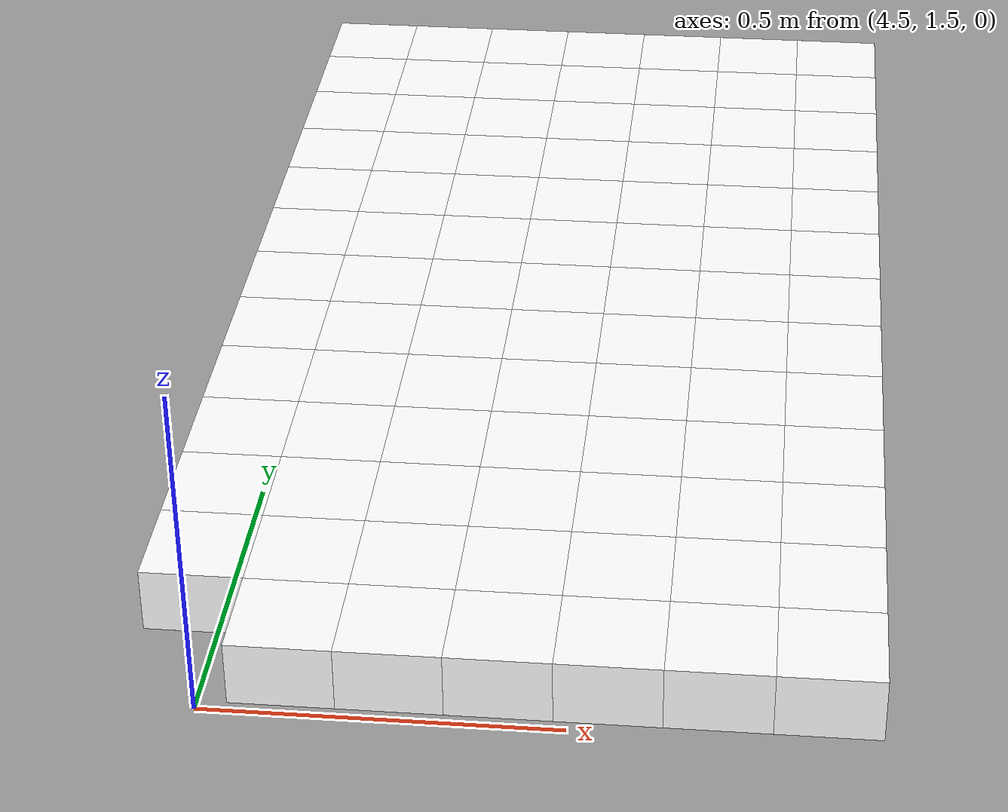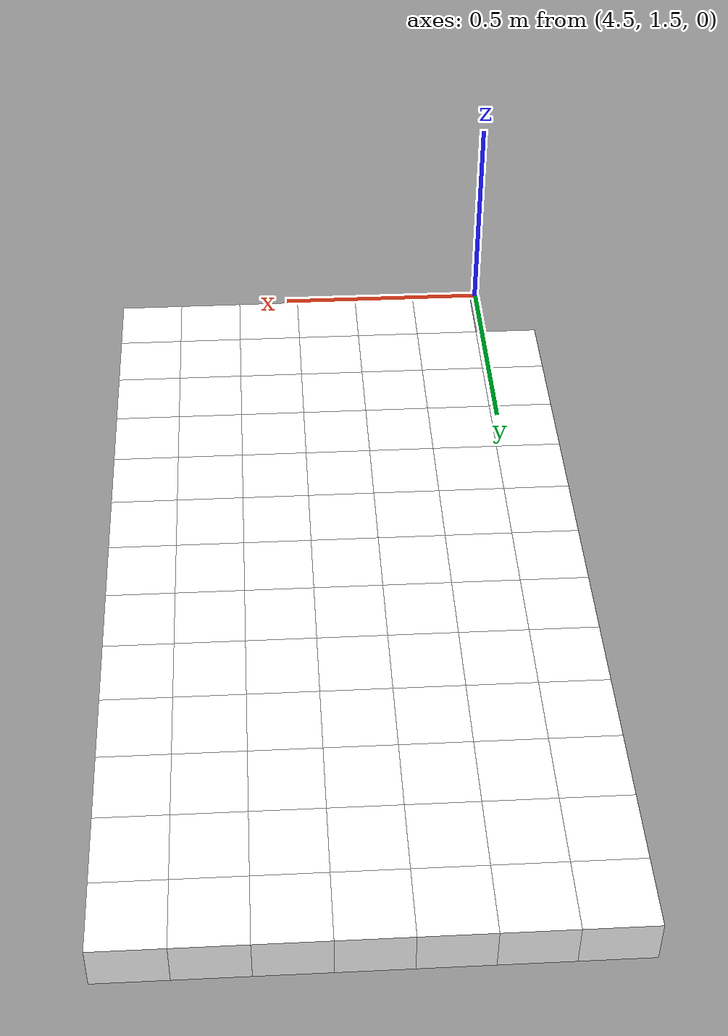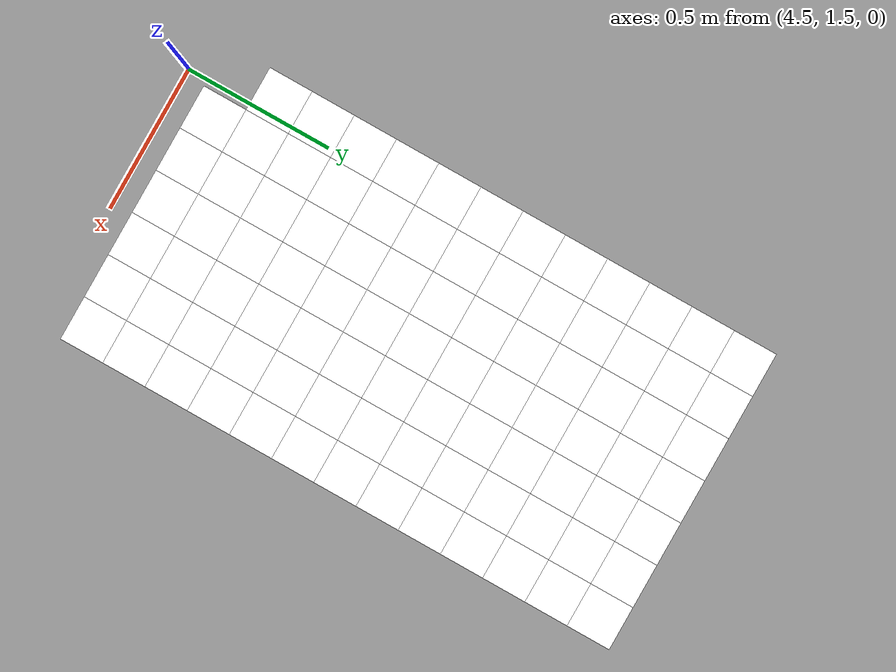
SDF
<sdf version="1.7">
 <world name="default">
  <include><uri>model://sun</uri></include>
  <model name="static_environment">
   <static>true</static>
   <link name="region_574">
    <pose>4.600000000000005 1.65 0.0 0.0 0.0 0.0</pose>
    <collision name="region_574_collision">
     <geometry><box><size>0.15 0.15 0.1</size></box></geometry>
     <surface><friction><ode><mu>1.0</mu><mu2>1.0</mu2></ode></friction></surface>
    </collision>
    <visual name="region_574_visual">
     <geometry><box><size>0.15 0.15 0.1</size></box></geometry>
     <material><ambient>1.0 1.0 1.0 1.0</ambient><diffuse>1.0 1.0 1.0 1.0</diffuse></material>
    </visual>
   </link>
   <link name="region_575">
    <pose>4.750000000000005 1.65 0.0 0.0 0.0 0.0</pose>
    <collision name="region_575_collision">
     <geometry><box><size>0.15 0.15 0.1</size></box></geometry>
     <surface><friction><ode><mu>1.0</mu><mu2>1.0</mu2></ode></friction></surface>
    </collision>
    <visual name="region_575_visual">
     <geometry><box><size>0.15 0.15 0.1</size></box></geometry>
     <material><ambient>1.0 1.0 1.0 1.0</ambient><diffuse>1.0 1.0 1.0 1.0</diffuse></material>
    </visual>
   </link>
   <link name="region_576">
    <pose>4.900000000000006 1.65 0.0 0.0 0.0 0.0</pose>
    <collision name="region_576_collision">
     <geometry><box><size>0.15 0.15 0.1</size></box></geometry>
     <surface><friction><ode><mu>1.0</mu><mu2>1.0</mu2></ode></friction></surface>
    </collision>
    <visual name="region_576_visual">
     <geometry><box><size>0.15 0.15 0.1</size></box></geometry>
     <material><ambient>1.0 1.0 1.0 1.0</ambient><diffuse>1.0 1.0 1.0 1.0</diffuse></material>
    </visual>
   </link>
   <link name="region_577">
    <pose>5.050000000000006 1.65 0.0 0.0 0.0 0.0</pose>
    <collision name="region_577_collision">
     <geometry><box><size>0.15 0.15 0.1</size></box></geometry>
     <surface><friction><ode><mu>1.0</mu><mu2>1.0</mu2></ode></friction></surface>
    </collision>
    <visual name="region_577_visual">
     <geometry><box><size>0.15 0.15 0.1</size></box></geometry>
     <material><ambient>1.0 1.0 1.0 1.0</ambient><diffuse>1.0 1.0 1.0 1.0</diffuse></material>
    </visual>
   </link>
   <link name="region_578">
    <pose>5.200000000000006 1.65 0.0 0.0 0.0 0.0</pose>
    <collision name="region_578_collision">
     <geometry><box><size>0.15 0.15 0.1</size></box></geometry>
     <surface><friction><ode><mu>1.0</mu><mu2>1.0</mu2></ode></friction></surface>
    </collision>
    <visual name="region_578_visual">
     <geometry><box><size>0.15 0.15 0.1</size></box></geometry>
     <material><ambient>1.0 1.0 1.0 1.0</ambient><diffuse>1.0 1.0 1.0 1.0</diffuse></material>
    </visual>
   </link>
   <link name="region_579">
    <pose>5.350000000000007 1.65 0.0 0.0 0.0 0.0</pose>
    <collision name="region_579_collision">
     <geometry><box><size>0.15 0.15 0.1</size></box></geometry>
     <surface><friction><ode><mu>1.0</mu><mu2>1.0</mu2></ode></friction></surface>
    </collision>
    <visual name="region_579_visual">
     <geometry><box><size>0.15 0.15 0.1</size></box></geometry>
     <material><ambient>1.0 1.0 1.0 1.0</ambient><diffuse>1.0 1.0 1.0 1.0</diffuse></material>
    </visual>
   </link>
   <link name="region_593">
    <pose>4.450000000000005 1.7999999999999998 0.0 0.0 0.0 0.0</pose>
    <collision name="region_593_collision">
     <geometry><box><size>0.15 0.15 0.1</size></box></geometry>
     <surface><friction><ode><mu>1.0</mu><mu2>1.0</mu2></ode></friction></surface>
    </collision>
    <visual name="region_593_visual">
     <geometry><box><size>0.15 0.15 0.1</size></box></geometry>
     <material><ambient>1.0 1.0 1.0 1.0</ambient><diffuse>1.0 1.0 1.0 1.0</diffuse></material>
    </visual>
   </link>
   <link name="region_594">
    <pose>4.600000000000005 1.7999999999999998 0.0 0.0 0.0 0.0</pose>
    <collision name="region_594_collision">
     <geometry><box><size>0.15 0.15 0.1</size></box></geometry>
     <surface><friction><ode><mu>1.0</mu><mu2>1.0</mu2></ode></friction></surface>
    </collision>
    <visual name="region_594_visual">
     <geometry><box><size>0.15 0.15 0.1</size></box></geometry>
     <material><ambient>1.0 1.0 1.0 1.0</ambient><diffuse>1.0 1.0 1.0 1.0</diffuse></material>
    </visual>
   </link>
   <link name="region_595">
    <pose>4.750000000000005 1.7999999999999998 0.0 0.0 0.0 0.0</pose>
    <collision name="region_595_collision">
     <geometry><box><size>0.15 0.15 0.1</size></box></geometry>
     <surface><friction><ode><mu>1.0</mu><mu2>1.0</mu2></ode></friction></surface>
    </collision>
    <visual name="region_595_visual">
     <geometry><box><size>0.15 0.15 0.1</size></box></geometry>
     <material><ambient>1.0 1.0 1.0 1.0</ambient><diffuse>1.0 1.0 1.0 1.0</diffuse></material>
    </visual>
   </link>
   <link name="region_596">
    <pose>4.900000000000006 1.7999999999999998 0.0 0.0 0.0 0.0</pose>
    <collision name="region_596_collision">
     <geometry><box><size>0.15 0.15 0.1</size></box></geometry>
     <surface><friction><ode><mu>1.0</mu><mu2>1.0</mu2></ode></friction></surface>
    </collision>
    <visual name="region_596_visual">
     <geometry><box><size>0.15 0.15 0.1</size></box></geometry>
     <material><ambient>1.0 1.0 1.0 1.0</ambient><diffuse>1.0 1.0 1.0 1.0</diffuse></material>
    </visual>
   </link>
   <link name="region_597">
    <pose>5.050000000000006 1.7999999999999998 0.0 0.0 0.0 0.0</pose>
    <collision name="region_597_collision">
     <geometry><box><size>0.15 0.15 0.1</size></box></geometry>
     <surface><friction><ode><mu>1.0</mu><mu2>1.0</mu2></ode></friction></surface>
    </collision>
    <visual name="region_597_visual">
     <geometry><box><size>0.15 0.15 0.1</size></box></geometry>
     <material><ambient>1.0 1.0 1.0 1.0</ambient><diffuse>1.0 1.0 1.0 1.0</diffuse></material>
    </visual>
   </link>
   <link name="region_598">
    <pose>5.200000000000006 1.7999999999999998 0.0 0.0 0.0 0.0</pose>
    <collision name="region_598_collision">
     <geometry><box><size>0.15 0.15 0.1</size></box></geometry>
     <surface><friction><ode><mu>1.0</mu><mu2>1.0</mu2></ode></friction></surface>
    </collision>
    <visual name="region_598_visual">
     <geometry><box><size>0.15 0.15 0.1</size></box></geometry>
     <material><ambient>1.0 1.0 1.0 1.0</ambient><diffuse>1.0 1.0 1.0 1.0</diffuse></material>
    </visual>
   </link>
   <link name="region_599">
    <pose>5.350000000000007 1.7999999999999998 0.0 0.0 0.0 0.0</pose>
    <collision name="region_599_collision">
     <geometry><box><size>0.15 0.15 0.1</size></box></geometry>
     <surface><friction><ode><mu>1.0</mu><mu2>1.0</mu2></ode></friction></surface>
    </collision>
    <visual name="region_599_visual">
     <geometry><box><size>0.15 0.15 0.1</size></box></geometry>
     <material><ambient>1.0 1.0 1.0 1.0</ambient><diffuse>1.0 1.0 1.0 1.0</diffuse></material>
    </visual>
   </link>
   <link name="region_613">
    <pose>4.450000000000005 1.9499999999999997 0.0 0.0 0.0 0.0</pose>
    <collision name="region_613_collision">
     <geometry><box><size>0.15 0.15 0.1</size></box></geometry>
     <surface><friction><ode><mu>1.0</mu><mu2>1.0</mu2></ode></friction></surface>
    </collision>
    <visual name="region_613_visual">
     <geometry><box><size>0.15 0.15 0.1</size></box></geometry>
     <material><ambient>1.0 1.0 1.0 1.0</ambient><diffuse>1.0 1.0 1.0 1.0</diffuse></material>
    </visual>
   </link>
   <link name="region_614">
    <pose>4.600000000000005 1.9499999999999997 0.0 0.0 0.0 0.0</pose>
    <collision name="region_614_collision">
     <geometry><box><size>0.15 0.15 0.1</size></box></geometry>
     <surface><friction><ode><mu>1.0</mu><mu2>1.0</mu2></ode></friction></surface>
    </collision>
    <visual name="region_614_visual">
     <geometry><box><size>0.15 0.15 0.1</size></box></geometry>
     <material><ambient>1.0 1.0 1.0 1.0</ambient><diffuse>1.0 1.0 1.0 1.0</diffuse></material>
    </visual>
   </link>
   <link name="region_615">
    <pose>4.750000000000005 1.9499999999999997 0.0 0.0 0.0 0.0</pose>
    <collision name="region_615_collision">
     <geometry><box><size>0.15 0.15 0.1</size></box></geometry>
     <surface><friction><ode><mu>1.0</mu><mu2>1.0</mu2></ode></friction></surface>
    </collision>
    <visual name="region_615_visual">
     <geometry><box><size>0.15 0.15 0.1</size></box></geometry>
     <material><ambient>1.0 1.0 1.0 1.0</ambient><diffuse>1.0 1.0 1.0 1.0</diffuse></material>
    </visual>
   </link>
   <link name="region_616">
    <pose>4.900000000000006 1.9499999999999997 0.0 0.0 0.0 0.0</pose>
    <collision name="region_616_collision">
     <geometry><box><size>0.15 0.15 0.1</size></box></geometry>
     <surface><friction><ode><mu>1.0</mu><mu2>1.0</mu2></ode></friction></surface>
    </collision>
    <visual name="region_616_visual">
     <geometry><box><size>0.15 0.15 0.1</size></box></geometry>
     <material><ambient>1.0 1.0 1.0 1.0</ambient><diffuse>1.0 1.0 1.0 1.0</diffuse></material>
    </visual>
   </link>
   <link name="region_617">
    <pose>5.050000000000006 1.9499999999999997 0.0 0.0 0.0 0.0</pose>
    <collision name="region_617_collision">
     <geometry><box><size>0.15 0.15 0.1</size></box></geometry>
     <surface><friction><ode><mu>1.0</mu><mu2>1.0</mu2></ode></friction></surface>
    </collision>
    <visual name="region_617_visual">
     <geometry><box><size>0.15 0.15 0.1</size></box></geometry>
     <material><ambient>1.0 1.0 1.0 1.0</ambient><diffuse>1.0 1.0 1.0 1.0</diffuse></material>
    </visual>
   </link>
   <link name="region_618">
    <pose>5.200000000000006 1.9499999999999997 0.0 0.0 0.0 0.0</pose>
    <collision name="region_618_collision">
     <geometry><box><size>0.15 0.15 0.1</size></box></geometry>
     <surface><friction><ode><mu>1.0</mu><mu2>1.0</mu2></ode></friction></surface>
    </collision>
    <visual name="region_618_visual">
     <geometry><box><size>0.15 0.15 0.1</size></box></geometry>
     <material><ambient>1.0 1.0 1.0 1.0</ambient><diffuse>1.0 1.0 1.0 1.0</diffuse></material>
    </visual>
   </link>
   <link name="region_619">
    <pose>5.350000000000007 1.9499999999999997 0.0 0.0 0.0 0.0</pose>
    <collision name="region_619_collision">
     <geometry><box><size>0.15 0.15 0.1</size></box></geometry>
     <surface><friction><ode><mu>1.0</mu><mu2>1.0</mu2></ode></friction></surface>
    </collision>
    <visual name="region_619_visual">
     <geometry><box><size>0.15 0.15 0.1</size></box></geometry>
     <material><ambient>1.0 1.0 1.0 1.0</ambient><diffuse>1.0 1.0 1.0 1.0</diffuse></material>
    </visual>
   </link>
   <link name="region_633">
    <pose>4.450000000000005 2.0999999999999996 0.0 0.0 0.0 0.0</pose>
    <collision name="region_633_collision">
     <geometry><box><size>0.15 0.15 0.1</size></box></geometry>
     <surface><friction><ode><mu>1.0</mu><mu2>1.0</mu2></ode></friction></surface>
    </collision>
    <visual name="region_633_visual">
     <geometry><box><size>0.15 0.15 0.1</size></box></geometry>
     <material><ambient>1.0 1.0 1.0 1.0</ambient><diffuse>1.0 1.0 1.0 1.0</diffuse></material>
    </visual>
   </link>
   <link name="region_634">
    <pose>4.600000000000005 2.0999999999999996 0.0 0.0 0.0 0.0</pose>
    <collision name="region_634_collision">
     <geometry><box><size>0.15 0.15 0.1</size></box></geometry>
     <surface><friction><ode><mu>1.0</mu><mu2>1.0</mu2></ode></friction></surface>
    </collision>
    <visual name="region_634_visual">
     <geometry><box><size>0.15 0.15 0.1</size></box></geometry>
     <material><ambient>1.0 1.0 1.0 1.0</ambient><diffuse>1.0 1.0 1.0 1.0</diffuse></material>
    </visual>
   </link>
   <link name="region_635">
    <pose>4.750000000000005 2.0999999999999996 0.0 0.0 0.0 0.0</pose>
    <collision name="region_635_collision">
     <geometry><box><size>0.15 0.15 0.1</size></box></geometry>
     <surface><friction><ode><mu>1.0</mu><mu2>1.0</mu2></ode></friction></surface>
    </collision>
    <visual name="region_635_visual">
     <geometry><box><size>0.15 0.15 0.1</size></box></geometry>
     <material><ambient>1.0 1.0 1.0 1.0</ambient><diffuse>1.0 1.0 1.0 1.0</diffuse></material>
    </visual>
   </link>
   <link name="region_636">
    <pose>4.900000000000006 2.0999999999999996 0.0 0.0 0.0 0.0</pose>
    <collision name="region_636_collision">
     <geometry><box><size>0.15 0.15 0.1</size></box></geometry>
     <surface><friction><ode><mu>1.0</mu><mu2>1.0</mu2></ode></friction></surface>
    </collision>
    <visual name="region_636_visual">
     <geometry><box><size>0.15 0.15 0.1</size></box></geometry>
     <material><ambient>1.0 1.0 1.0 1.0</ambient><diffuse>1.0 1.0 1.0 1.0</diffuse></material>
    </visual>
   </link>
   <link name="region_637">
    <pose>5.050000000000006 2.0999999999999996 0.0 0.0 0.0 0.0</pose>
    <collision name="region_637_collision">
     <geometry><box><size>0.15 0.15 0.1</size></box></geometry>
     <surface><friction><ode><mu>1.0</mu><mu2>1.0</mu2></ode></friction></surface>
    </collision>
    <visual name="region_637_visual">
     <geometry><box><size>0.15 0.15 0.1</size></box></geometry>
     <material><ambient>1.0 1.0 1.0 1.0</ambient><diffuse>1.0 1.0 1.0 1.0</diffuse></material>
    </visual>
   </link>
   <link name="region_638">
    <pose>5.200000000000006 2.0999999999999996 0.0 0.0 0.0 0.0</pose>
    <collision name="region_638_collision">
     <geometry><box><size>0.15 0.15 0.1</size></box></geometry>
     <surface><friction><ode><mu>1.0</mu><mu2>1.0</mu2></ode></friction></surface>
    </collision>
    <visual name="region_638_visual">
     <geometry><box><size>0.15 0.15 0.1</size></box></geometry>
     <material><ambient>1.0 1.0 1.0 1.0</ambient><diffuse>1.0 1.0 1.0 1.0</diffuse></material>
    </visual>
   </link>
   <link name="region_639">
    <pose>5.350000000000007 2.0999999999999996 0.0 0.0 0.0 0.0</pose>
    <collision name="region_639_collision">
     <geometry><box><size>0.15 0.15 0.1</size></box></geometry>
     <surface><friction><ode><mu>1.0</mu><mu2>1.0</mu2></ode></friction></surface>
    </collision>
    <visual name="region_639_visual">
     <geometry><box><size>0.15 0.15 0.1</size></box></geometry>
     <material><ambient>1.0 1.0 1.0 1.0</ambient><diffuse>1.0 1.0 1.0 1.0</diffuse></material>
    </visual>
   </link>
   <link name="region_653">
    <pose>4.450000000000005 2.2499999999999996 0.0 0.0 0.0 0.0</pose>
    <collision name="region_653_collision">
     <geometry><box><size>0.15 0.15 0.1</size></box></geometry>
     <surface><friction><ode><mu>1.0</mu><mu2>1.0</mu2></ode></friction></surface>
    </collision>
    <visual name="region_653_visual">
     <geometry><box><size>0.15 0.15 0.1</size></box></geometry>
     <material><ambient>1.0 1.0 1.0 1.0</ambient><diffuse>1.0 1.0 1.0 1.0</diffuse></material>
    </visual>
   </link>
   <link name="region_654">
    <pose>4.600000000000005 2.2499999999999996 0.0 0.0 0.0 0.0</pose>
    <collision name="region_654_collision">
     <geometry><box><size>0.15 0.15 0.1</size></box></geometry>
     <surface><friction><ode><mu>1.0</mu><mu2>1.0</mu2></ode></friction></surface>
    </collision>
    <visual name="region_654_visual">
     <geometry><box><size>0.15 0.15 0.1</size></box></geometry>
     <material><ambient>1.0 1.0 1.0 1.0</ambient><diffuse>1.0 1.0 1.0 1.0</diffuse></material>
    </visual>
   </link>
   <link name="region_655">
    <pose>4.750000000000005 2.2499999999999996 0.0 0.0 0.0 0.0</pose>
    <collision name="region_655_collision">
     <geometry><box><size>0.15 0.15 0.1</size></box></geometry>
     <surface><friction><ode><mu>1.0</mu><mu2>1.0</mu2></ode></friction></surface>
    </collision>
    <visual name="region_655_visual">
     <geometry><box><size>0.15 0.15 0.1</size></box></geometry>
     <material><ambient>1.0 1.0 1.0 1.0</ambient><diffuse>1.0 1.0 1.0 1.0</diffuse></material>
    </visual>
   </link>
   <link name="region_656">
    <pose>4.900000000000006 2.2499999999999996 0.0 0.0 0.0 0.0</pose>
    <collision name="region_656_collision">
     <geometry><box><size>0.15 0.15 0.1</size></box></geometry>
     <surface><friction><ode><mu>1.0</mu><mu2>1.0</mu2></ode></friction></surface>
    </collision>
    <visual name="region_656_visual">
     <geometry><box><size>0.15 0.15 0.1</size></box></geometry>
     <material><ambient>1.0 1.0 1.0 1.0</ambient><diffuse>1.0 1.0 1.0 1.0</diffuse></material>
    </visual>
   </link>
   <link name="region_657">
    <pose>5.050000000000006 2.2499999999999996 0.0 0.0 0.0 0.0</pose>
    <collision name="region_657_collision">
     <geometry><box><size>0.15 0.15 0.1</size></box></geometry>
     <surface><friction><ode><mu>1.0</mu><mu2>1.0</mu2></ode></friction></surface>
    </collision>
    <visual name="region_657_visual">
     <geometry><box><size>0.15 0.15 0.1</size></box></geometry>
     <material><ambient>1.0 1.0 1.0 1.0</ambient><diffuse>1.0 1.0 1.0 1.0</diffuse></material>
    </visual>
   </link>
   <link name="region_658">
    <pose>5.200000000000006 2.2499999999999996 0.0 0.0 0.0 0.0</pose>
    <collision name="region_658_collision">
     <geometry><box><size>0.15 0.15 0.1</size></box></geometry>
     <surface><friction><ode><mu>1.0</mu><mu2>1.0</mu2></ode></friction></surface>
    </collision>
    <visual name="region_658_visual">
     <geometry><box><size>0.15 0.15 0.1</size></box></geometry>
     <material><ambient>1.0 1.0 1.0 1.0</ambient><diffuse>1.0 1.0 1.0 1.0</diffuse></material>
    </visual>
   </link>
   <link name="region_659">
    <pose>5.350000000000007 2.2499999999999996 0.0 0.0 0.0 0.0</pose>
    <collision name="region_659_collision">
     <geometry><box><size>0.15 0.15 0.1</size></box></geometry>
     <surface><friction><ode><mu>1.0</mu><mu2>1.0</mu2></ode></friction></surface>
    </collision>
    <visual name="region_659_visual">
     <geometry><box><size>0.15 0.15 0.1</size></box></geometry>
     <material><ambient>1.0 1.0 1.0 1.0</ambient><diffuse>1.0 1.0 1.0 1.0</diffuse></material>
    </visual>
   </link>
   <link name="region_673">
    <pose>4.450000000000005 2.3999999999999995 0.0 0.0 0.0 0.0</pose>
    <collision name="region_673_collision">
     <geometry><box><size>0.15 0.15 0.1</size></box></geometry>
     <surface><friction><ode><mu>1.0</mu><mu2>1.0</mu2></ode></friction></surface>
    </collision>
    <visual name="region_673_visual">
     <geometry><box><size>0.15 0.15 0.1</size></box></geometry>
     <material><ambient>1.0 1.0 1.0 1.0</ambient><diffuse>1.0 1.0 1.0 1.0</diffuse></material>
    </visual>
   </link>
   <link name="region_674">
    <pose>4.600000000000005 2.3999999999999995 0.0 0.0 0.0 0.0</pose>
    <collision name="region_674_collision">
     <geometry><box><size>0.15 0.15 0.1</size></box></geometry>
     <surface><friction><ode><mu>1.0</mu><mu2>1.0</mu2></ode></friction></surface>
    </collision>
    <visual name="region_674_visual">
     <geometry><box><size>0.15 0.15 0.1</size></box></geometry>
     <material><ambient>1.0 1.0 1.0 1.0</ambient><diffuse>1.0 1.0 1.0 1.0</diffuse></material>
    </visual>
   </link>
   <link name="region_675">
    <pose>4.750000000000005 2.3999999999999995 0.0 0.0 0.0 0.0</pose>
    <collision name="region_675_collision">
     <geometry><box><size>0.15 0.15 0.1</size></box></geometry>
     <surface><friction><ode><mu>1.0</mu><mu2>1.0</mu2></ode></friction></surface>
    </collision>
    <visual name="region_675_visual">
     <geometry><box><size>0.15 0.15 0.1</size></box></geometry>
     <material><ambient>1.0 1.0 1.0 1.0</ambient><diffuse>1.0 1.0 1.0 1.0</diffuse></material>
    </visual>
   </link>
   <link name="region_676">
    <pose>4.900000000000006 2.3999999999999995 0.0 0.0 0.0 0.0</pose>
    <collision name="region_676_collision">
     <geometry><box><size>0.15 0.15 0.1</size></box></geometry>
     <surface><friction><ode><mu>1.0</mu><mu2>1.0</mu2></ode></friction></surface>
    </collision>
    <visual name="region_676_visual">
     <geometry><box><size>0.15 0.15 0.1</size></box></geometry>
     <material><ambient>1.0 1.0 1.0 1.0</ambient><diffuse>1.0 1.0 1.0 1.0</diffuse></material>
    </visual>
   </link>
   <link name="region_677">
    <pose>5.050000000000006 2.3999999999999995 0.0 0.0 0.0 0.0</pose>
    <collision name="region_677_collision">
     <geometry><box><size>0.15 0.15 0.1</size></box></geometry>
     <surface><friction><ode><mu>1.0</mu><mu2>1.0</mu2></ode></friction></surface>
    </collision>
    <visual name="region_677_visual">
     <geometry><box><size>0.15 0.15 0.1</size></box></geometry>
     <material><ambient>1.0 1.0 1.0 1.0</ambient><diffuse>1.0 1.0 1.0 1.0</diffuse></material>
    </visual>
   </link>
   <link name="region_678">
    <pose>5.200000000000006 2.3999999999999995 0.0 0.0 0.0 0.0</pose>
    <collision name="region_678_collision">
     <geometry><box><size>0.15 0.15 0.1</size></box></geometry>
     <surface><friction><ode><mu>1.0</mu><mu2>1.0</mu2></ode></friction></surface>
    </collision>
    <visual name="region_678_visual">
     <geometry><box><size>0.15 0.15 0.1</size></box></geometry>
     <material><ambient>1.0 1.0 1.0 1.0</ambient><diffuse>1.0 1.0 1.0 1.0</diffuse></material>
    </visual>
   </link>
   <link name="region_679">
    <pose>5.350000000000007 2.3999999999999995 0.0 0.0 0.0 0.0</pose>
    <collision name="region_679_collision">
     <geometry><box><size>0.15 0.15 0.1</size></box></geometry>
     <surface><friction><ode><mu>1.0</mu><mu2>1.0</mu2></ode></friction></surface>
    </collision>
    <visual name="region_679_visual">
     <geometry><box><size>0.15 0.15 0.1</size></box></geometry>
     <material><ambient>1.0 1.0 1.0 1.0</ambient><diffuse>1.0 1.0 1.0 1.0</diffuse></material>
    </visual>
   </link>
   <link name="region_693">
    <pose>4.450000000000005 2.5499999999999994 0.0 0.0 0.0 0.0</pose>
    <collision name="region_693_collision">
     <geometry><box><size>0.15 0.15 0.1</size></box></geometry>
     <surface><friction><ode><mu>1.0</mu><mu2>1.0</mu2></ode></friction></surface>
    </collision>
    <visual name="region_693_visual">
     <geometry><box><size>0.15 0.15 0.1</size></box></geometry>
     <material><ambient>1.0 1.0 1.0 1.0</ambient><diffuse>1.0 1.0 1.0 1.0</diffuse></material>
    </visual>
   </link>
   <link name="region_694">
    <pose>4.600000000000005 2.5499999999999994 0.0 0.0 0.0 0.0</pose>
    <collision name="region_694_collision">
     <geometry><box><size>0.15 0.15 0.1</size></box></geometry>
     <surface><friction><ode><mu>1.0</mu><mu2>1.0</mu2></ode></friction></surface>
    </collision>
    <visual name="region_694_visual">
     <geometry><box><size>0.15 0.15 0.1</size></box></geometry>
     <material><ambient>1.0 1.0 1.0 1.0</ambient><diffuse>1.0 1.0 1.0 1.0</diffuse></material>
    </visual>
   </link>
   <link name="region_695">
    <pose>4.750000000000005 2.5499999999999994 0.0 0.0 0.0 0.0</pose>
    <collision name="region_695_collision">
     <geometry><box><size>0.15 0.15 0.1</size></box></geometry>
     <surface><friction><ode><mu>1.0</mu><mu2>1.0</mu2></ode></friction></surface>
    </collision>
    <visual name="region_695_visual">
     <geometry><box><size>0.15 0.15 0.1</size></box></geometry>
     <material><ambient>1.0 1.0 1.0 1.0</ambient><diffuse>1.0 1.0 1.0 1.0</diffuse></material>
    </visual>
   </link>
   <link name="region_696">
    <pose>4.900000000000006 2.5499999999999994 0.0 0.0 0.0 0.0</pose>
    <collision name="region_696_collision">
     <geometry><box><size>0.15 0.15 0.1</size></box></geometry>
     <surface><friction><ode><mu>1.0</mu><mu2>1.0</mu2></ode></friction></surface>
    </collision>
    <visual name="region_696_visual">
     <geometry><box><size>0.15 0.15 0.1</size></box></geometry>
     <material><ambient>1.0 1.0 1.0 1.0</ambient><diffuse>1.0 1.0 1.0 1.0</diffuse></material>
    </visual>
   </link>
   <link name="region_697">
    <pose>5.050000000000006 2.5499999999999994 0.0 0.0 0.0 0.0</pose>
    <collision name="region_697_collision">
     <geometry><box><size>0.15 0.15 0.1</size></box></geometry>
     <surface><friction><ode><mu>1.0</mu><mu2>1.0</mu2></ode></friction></surface>
    </collision>
    <visual name="region_697_visual">
     <geometry><box><size>0.15 0.15 0.1</size></box></geometry>
     <material><ambient>1.0 1.0 1.0 1.0</ambient><diffuse>1.0 1.0 1.0 1.0</diffuse></material>
    </visual>
   </link>
   <link name="region_698">
    <pose>5.200000000000006 2.5499999999999994 0.0 0.0 0.0 0.0</pose>
    <collision name="region_698_collision">
     <geometry><box><size>0.15 0.15 0.1</size></box></geometry>
     <surface><friction><ode><mu>1.0</mu><mu2>1.0</mu2></ode></friction></surface>
    </collision>
    <visual name="region_698_visual">
     <geometry><box><size>0.15 0.15 0.1</size></box></geometry>
     <material><ambient>1.0 1.0 1.0 1.0</ambient><diffuse>1.0 1.0 1.0 1.0</diffuse></material>
    </visual>
   </link>
   <link name="region_699">
    <pose>5.350000000000007 2.5499999999999994 0.0 0.0 0.0 0.0</pose>
    <collision name="region_699_collision">
     <geometry><box><size>0.15 0.15 0.1</size></box></geometry>
     <surface><friction><ode><mu>1.0</mu><mu2>1.0</mu2></ode></friction></surface>
    </collision>
    <visual name="region_699_visual">
     <geometry><box><size>0.15 0.15 0.1</size></box></geometry>
     <material><ambient>1.0 1.0 1.0 1.0</ambient><diffuse>1.0 1.0 1.0 1.0</diffuse></material>
    </visual>
   </link>
   <link name="region_713">
    <pose>4.450000000000005 2.6999999999999997 0.0 0.0 0.0 0.0</pose>
    <collision name="region_713_collision">
     <geometry><box><size>0.15 0.15 0.1</size></box></geometry>
     <surface><friction><ode><mu>1.0</mu><mu2>1.0</mu2></ode></friction></surface>
    </collision>
    <visual name="region_713_visual">
     <geometry><box><size>0.15 0.15 0.1</size></box></geometry>
     <material><ambient>1.0 1.0 1.0 1.0</ambient><diffuse>1.0 1.0 1.0 1.0</diffuse></material>
    </visual>
   </link>
   <link name="region_714">
    <pose>4.600000000000005 2.6999999999999997 0.0 0.0 0.0 0.0</pose>
    <collision name="region_714_collision">
     <geometry><box><size>0.15 0.15 0.1</size></box></geometry>
     <surface><friction><ode><mu>1.0</mu><mu2>1.0</mu2></ode></friction></surface>
    </collision>
    <visual name="region_714_visual">
     <geometry><box><size>0.15 0.15 0.1</size></box></geometry>
     <material><ambient>1.0 1.0 1.0 1.0</ambient><diffuse>1.0 1.0 1.0 1.0</diffuse></material>
    </visual>
   </link>
   <link name="region_715">
    <pose>4.750000000000005 2.6999999999999997 0.0 0.0 0.0 0.0</pose>
    <collision name="region_715_collision">
     <geometry><box><size>0.15 0.15 0.1</size></box></geometry>
     <surface><friction><ode><mu>1.0</mu><mu2>1.0</mu2></ode></friction></surface>
    </collision>
    <visual name="region_715_visual">
     <geometry><box><size>0.15 0.15 0.1</size></box></geometry>
     <material><ambient>1.0 1.0 1.0 1.0</ambient><diffuse>1.0 1.0 1.0 1.0</diffuse></material>
    </visual>
   </link>
   <link name="region_716">
    <pose>4.900000000000006 2.6999999999999997 0.0 0.0 0.0 0.0</pose>
    <collision name="region_716_collision">
     <geometry><box><size>0.15 0.15 0.1</size></box></geometry>
     <surface><friction><ode><mu>1.0</mu><mu2>1.0</mu2></ode></friction></surface>
    </collision>
    <visual name="region_716_visual">
     <geometry><box><size>0.15 0.15 0.1</size></box></geometry>
     <material><ambient>1.0 1.0 1.0 1.0</ambient><diffuse>1.0 1.0 1.0 1.0</diffuse></material>
    </visual>
   </link>
   <link name="region_717">
    <pose>5.050000000000006 2.6999999999999997 0.0 0.0 0.0 0.0</pose>
    <collision name="region_717_collision">
     <geometry><box><size>0.15 0.15 0.1</size></box></geometry>
     <surface><friction><ode><mu>1.0</mu><mu2>1.0</mu2></ode></friction></surface>
    </collision>
    <visual name="region_717_visual">
     <geometry><box><size>0.15 0.15 0.1</size></box></geometry>
     <material><ambient>1.0 1.0 1.0 1.0</ambient><diffuse>1.0 1.0 1.0 1.0</diffuse></material>
    </visual>
   </link>
   <link name="region_718">
    <pose>5.200000000000006 2.6999999999999997 0.0 0.0 0.0 0.0</pose>
    <collision name="region_718_collision">
     <geometry><box><size>0.15 0.15 0.1</size></box></geometry>
     <surface><friction><ode><mu>1.0</mu><mu2>1.0</mu2></ode></friction></surface>
    </collision>
    <visual name="region_718_visual">
     <geometry><box><size>0.15 0.15 0.1</size></box></geometry>
     <material><ambient>1.0 1.0 1.0 1.0</ambient><diffuse>1.0 1.0 1.0 1.0</diffuse></material>
    </visual>
   </link>
   <link name="region_719">
    <pose>5.350000000000007 2.6999999999999997 0.0 0.0 0.0 0.0</pose>
    <collision name="region_719_collision">
     <geometry><box><size>0.15 0.15 0.1</size></box></geometry>
     <surface><friction><ode><mu>1.0</mu><mu2>1.0</mu2></ode></friction></surface>
    </collision>
    <visual name="region_719_visual">
     <geometry><box><size>0.15 0.15 0.1</size></box></geometry>
     <material><ambient>1.0 1.0 1.0 1.0</ambient><diffuse>1.0 1.0 1.0 1.0</diffuse></material>
    </visual>
   </link>
   <link name="region_733">
    <pose>4.450000000000005 2.8499999999999996 0.0 0.0 0.0 0.0</pose>
    <collision name="region_733_collision">
     <geometry><box><size>0.15 0.15 0.1</size></box></geometry>
     <surface><friction><ode><mu>1.0</mu><mu2>1.0</mu2></ode></friction></surface>
    </collision>
    <visual name="region_733_visual">
     <geometry><box><size>0.15 0.15 0.1</size></box></geometry>
     <material><ambient>1.0 1.0 1.0 1.0</ambient><diffuse>1.0 1.0 1.0 1.0</diffuse></material>
    </visual>
   </link>
   <link name="region_734">
    <pose>4.600000000000005 2.8499999999999996 0.0 0.0 0.0 0.0</pose>
    <collision name="region_734_collision">
     <geometry><box><size>0.15 0.15 0.1</size></box></geometry>
     <surface><friction><ode><mu>1.0</mu><mu2>1.0</mu2></ode></friction></surface>
    </collision>
    <visual name="region_734_visual">
     <geometry><box><size>0.15 0.15 0.1</size></box></geometry>
     <material><ambient>1.0 1.0 1.0 1.0</ambient><diffuse>1.0 1.0 1.0 1.0</diffuse></material>
    </visual>
   </link>
   <link name="region_735">
    <pose>4.750000000000005 2.8499999999999996 0.0 0.0 0.0 0.0</pose>
    <collision name="region_735_collision">
     <geometry><box><size>0.15 0.15 0.1</size></box></geometry>
     <surface><friction><ode><mu>1.0</mu><mu2>1.0</mu2></ode></friction></surface>
    </collision>
    <visual name="region_735_visual">
     <geometry><box><size>0.15 0.15 0.1</size></box></geometry>
     <material><ambient>1.0 1.0 1.0 1.0</ambient><diffuse>1.0 1.0 1.0 1.0</diffuse></material>
    </visual>
   </link>
   <link name="region_736">
    <pose>4.900000000000006 2.8499999999999996 0.0 0.0 0.0 0.0</pose>
    <collision name="region_736_collision">
     <geometry><box><size>0.15 0.15 0.1</size></box></geometry>
     <surface><friction><ode><mu>1.0</mu><mu2>1.0</mu2></ode></friction></surface>
    </collision>
    <visual name="region_736_visual">
     <geometry><box><size>0.15 0.15 0.1</size></box></geometry>
     <material><ambient>1.0 1.0 1.0 1.0</ambient><diffuse>1.0 1.0 1.0 1.0</diffuse></material>
    </visual>
   </link>
   <link name="region_737">
    <pose>5.050000000000006 2.8499999999999996 0.0 0.0 0.0 0.0</pose>
    <collision name="region_737_collision">
     <geometry><box><size>0.15 0.15 0.1</size></box></geometry>
     <surface><friction><ode><mu>1.0</mu><mu2>1.0</mu2></ode></friction></surface>
    </collision>
    <visual name="region_737_visual">
     <geometry><box><size>0.15 0.15 0.1</size></box></geometry>
     <material><ambient>1.0 1.0 1.0 1.0</ambient><diffuse>1.0 1.0 1.0 1.0</diffuse></material>
    </visual>
   </link>
   <link name="region_738">
    <pose>5.200000000000006 2.8499999999999996 0.0 0.0 0.0 0.0</pose>
    <collision name="region_738_collision">
     <geometry><box><size>0.15 0.15 0.1</size></box></geometry>
     <surface><friction><ode><mu>1.0</mu><mu2>1.0</mu2></ode></friction></surface>
    </collision>
    <visual name="region_738_visual">
     <geometry><box><size>0.15 0.15 0.1</size></box></geometry>
     <material><ambient>1.0 1.0 1.0 1.0</ambient><diffuse>1.0 1.0 1.0 1.0</diffuse></material>
    </visual>
   </link>
   <link name="region_739">
    <pose>5.350000000000007 2.8499999999999996 0.0 0.0 0.0 0.0</pose>
    <collision name="region_739_collision">
     <geometry><box><size>0.15 0.15 0.1</size></box></geometry>
     <surface><friction><ode><mu>1.0</mu><mu2>1.0</mu2></ode></friction></surface>
    </collision>
    <visual name="region_739_visual">
     <geometry><box><size>0.15 0.15 0.1</size></box></geometry>
     <material><ambient>1.0 1.0 1.0 1.0</ambient><diffuse>1.0 1.0 1.0 1.0</diffuse></material>
    </visual>
   </link>
   <link name="region_753">
    <pose>4.450000000000005 2.9999999999999996 0.0 0.0 0.0 0.0</pose>
    <collision name="region_753_collision">
     <geometry><box><size>0.15 0.15 0.1</size></box></geometry>
     <surface><friction><ode><mu>1.0</mu><mu2>1.0</mu2></ode></friction></surface>
    </collision>
    <visual name="region_753_visual">
     <geometry><box><size>0.15 0.15 0.1</size></box></geometry>
     <material><ambient>1.0 1.0 1.0 1.0</ambient><diffuse>1.0 1.0 1.0 1.0</diffuse></material>
    </visual>
   </link>
   <link name="region_754">
    <pose>4.600000000000005 2.9999999999999996 0.0 0.0 0.0 0.0</pose>
    <collision name="region_754_collision">
     <geometry><box><size>0.15 0.15 0.1</size></box></geometry>
     <surface><friction><ode><mu>1.0</mu><mu2>1.0</mu2></ode></friction></surface>
    </collision>
    <visual name="region_754_visual">
     <geometry><box><size>0.15 0.15 0.1</size></box></geometry>
     <material><ambient>1.0 1.0 1.0 1.0</ambient><diffuse>1.0 1.0 1.0 1.0</diffuse></material>
    </visual>
   </link>
   <link name="region_755">
    <pose>4.750000000000005 2.9999999999999996 0.0 0.0 0.0 0.0</pose>
    <collision name="region_755_collision">
     <geometry><box><size>0.15 0.15 0.1</size></box></geometry>
     <surface><friction><ode><mu>1.0</mu><mu2>1.0</mu2></ode></friction></surface>
    </collision>
    <visual name="region_755_visual">
     <geometry><box><size>0.15 0.15 0.1</size></box></geometry>
     <material><ambient>1.0 1.0 1.0 1.0</ambient><diffuse>1.0 1.0 1.0 1.0</diffuse></material>
    </visual>
   </link>
   <link name="region_756">
    <pose>4.900000000000006 2.9999999999999996 0.0 0.0 0.0 0.0</pose>
    <collision name="region_756_collision">
     <geometry><box><size>0.15 0.15 0.1</size></box></geometry>
     <surface><friction><ode><mu>1.0</mu><mu2>1.0</mu2></ode></friction></surface>
    </collision>
    <visual name="region_756_visual">
     <geometry><box><size>0.15 0.15 0.1</size></box></geometry>
     <material><ambient>1.0 1.0 1.0 1.0</ambient><diffuse>1.0 1.0 1.0 1.0</diffuse></material>
    </visual>
   </link>
   <link name="region_757">
    <pose>5.050000000000006 2.9999999999999996 0.0 0.0 0.0 0.0</pose>
    <collision name="region_757_collision">
     <geometry><box><size>0.15 0.15 0.1</size></box></geometry>
     <surface><friction><ode><mu>1.0</mu><mu2>1.0</mu2></ode></friction></surface>
    </collision>
    <visual name="region_757_visual">
     <geometry><box><size>0.15 0.15 0.1</size></box></geometry>
     <material><ambient>1.0 1.0 1.0 1.0</ambient><diffuse>1.0 1.0 1.0 1.0</diffuse></material>
    </visual>
   </link>
   <link name="region_758">
    <pose>5.200000000000006 2.9999999999999996 0.0 0.0 0.0 0.0</pose>
    <collision name="region_758_collision">
     <geometry><box><size>0.15 0.15 0.1</size></box></geometry>
     <surface><friction><ode><mu>1.0</mu><mu2>1.0</mu2></ode></friction></surface>
    </collision>
    <visual name="region_758_visual">
     <geometry><box><size>0.15 0.15 0.1</size></box></geometry>
     <material><ambient>1.0 1.0 1.0 1.0</ambient><diffuse>1.0 1.0 1.0 1.0</diffuse></material>
    </visual>
   </link>
   <link name="region_759">
    <pose>5.350000000000007 2.9999999999999996 0.0 0.0 0.0 0.0</pose>
    <collision name="region_759_collision">
     <geometry><box><size>0.15 0.15 0.1</size></box></geometry>
     <surface><friction><ode><mu>1.0</mu><mu2>1.0</mu2></ode></friction></surface>
    </collision>
    <visual name="region_759_visual">
     <geometry><box><size>0.15 0.15 0.1</size></box></geometry>
     <material><ambient>1.0 1.0 1.0 1.0</ambient><diffuse>1.0 1.0 1.0 1.0</diffuse></material>
    </visual>
   </link>
   <link name="region_773">
    <pose>4.450000000000005 3.1499999999999995 0.0 0.0 0.0 0.0</pose>
    <collision name="region_773_collision">
     <geometry><box><size>0.15 0.15 0.1</size></box></geometry>
     <surface><friction><ode><mu>1.0</mu><mu2>1.0</mu2></ode></friction></surface>
    </collision>
    <visual name="region_773_visual">
     <geometry><box><size>0.15 0.15 0.1</size></box></geometry>
     <material><ambient>1.0 1.0 1.0 1.0</ambient><diffuse>1.0 1.0 1.0 1.0</diffuse></material>
    </visual>
   </link>
   <link name="region_774">
    <pose>4.600000000000005 3.1499999999999995 0.0 0.0 0.0 0.0</pose>
    <collision name="region_774_collision">
     <geometry><box><size>0.15 0.15 0.1</size></box></geometry>
     <surface><friction><ode><mu>1.0</mu><mu2>1.0</mu2></ode></friction></surface>
    </collision>
    <visual name="region_774_visual">
     <geometry><box><size>0.15 0.15 0.1</size></box></geometry>
     <material><ambient>1.0 1.0 1.0 1.0</ambient><diffuse>1.0 1.0 1.0 1.0</diffuse></material>
    </visual>
   </link>
   <link name="region_775">
    <pose>4.750000000000005 3.1499999999999995 0.0 0.0 0.0 0.0</pose>
    <collision name="region_775_collision">
     <geometry><box><size>0.15 0.15 0.1</size></box></geometry>
     <surface><friction><ode><mu>1.0</mu><mu2>1.0</mu2></ode></friction></surface>
    </collision>
    <visual name="region_775_visual">
     <geometry><box><size>0.15 0.15 0.1</size></box></geometry>
     <material><ambient>1.0 1.0 1.0 1.0</ambient><diffuse>1.0 1.0 1.0 1.0</diffuse></material>
    </visual>
   </link>
   <link name="region_776">
    <pose>4.900000000000006 3.1499999999999995 0.0 0.0 0.0 0.0</pose>
    <collision name="region_776_collision">
     <geometry><box><size>0.15 0.15 0.1</size></box></geometry>
     <surface><friction><ode><mu>1.0</mu><mu2>1.0</mu2></ode></friction></surface>
    </collision>
    <visual name="region_776_visual">
     <geometry><box><size>0.15 0.15 0.1</size></box></geometry>
     <material><ambient>1.0 1.0 1.0 1.0</ambient><diffuse>1.0 1.0 1.0 1.0</diffuse></material>
    </visual>
   </link>
   <link name="region_777">
    <pose>5.050000000000006 3.1499999999999995 0.0 0.0 0.0 0.0</pose>
    <collision name="region_777_collision">
     <geometry><box><size>0.15 0.15 0.1</size></box></geometry>
     <surface><friction><ode><mu>1.0</mu><mu2>1.0</mu2></ode></friction></surface>
    </collision>
    <visual name="region_777_visual">
     <geometry><box><size>0.15 0.15 0.1</size></box></geometry>
     <material><ambient>1.0 1.0 1.0 1.0</ambient><diffuse>1.0 1.0 1.0 1.0</diffuse></material>
    </visual>
   </link>
   <link name="region_778">
    <pose>5.200000000000006 3.1499999999999995 0.0 0.0 0.0 0.0</pose>
    <collision name="region_778_collision">
     <geometry><box><size>0.15 0.15 0.1</size></box></geometry>
     <surface><friction><ode><mu>1.0</mu><mu2>1.0</mu2></ode></friction></surface>
    </collision>
    <visual name="region_778_visual">
     <geometry><box><size>0.15 0.15 0.1</size></box></geometry>
     <material><ambient>1.0 1.0 1.0 1.0</ambient><diffuse>1.0 1.0 1.0 1.0</diffuse></material>
    </visual>
   </link>
   <link name="region_779">
    <pose>5.350000000000007 3.1499999999999995 0.0 0.0 0.0 0.0</pose>
    <collision name="region_779_collision">
     <geometry><box><size>0.15 0.15 0.1</size></box></geometry>
     <surface><friction><ode><mu>1.0</mu><mu2>1.0</mu2></ode></friction></surface>
    </collision>
    <visual name="region_779_visual">
     <geometry><box><size>0.15 0.15 0.1</size></box></geometry>
     <material><ambient>1.0 1.0 1.0 1.0</ambient><diffuse>1.0 1.0 1.0 1.0</diffuse></material>
    </visual>
   </link>
   <link name="region_793">
    <pose>4.450000000000005 3.2999999999999994 0.0 0.0 0.0 0.0</pose>
    <collision name="region_793_collision">
     <geometry><box><size>0.15 0.15 0.1</size></box></geometry>
     <surface><friction><ode><mu>1.0</mu><mu2>1.0</mu2></ode></friction></surface>
    </collision>
    <visual name="region_793_visual">
     <geometry><box><size>0.15 0.15 0.1</size></box></geometry>
     <material><ambient>1.0 1.0 1.0 1.0</ambient><diffuse>1.0 1.0 1.0 1.0</diffuse></material>
    </visual>
   </link>
   <link name="region_794">
    <pose>4.600000000000005 3.2999999999999994 0.0 0.0 0.0 0.0</pose>
    <collision name="region_794_collision">
     <geometry><box><size>0.15 0.15 0.1</size></box></geometry>
     <surface><friction><ode><mu>1.0</mu><mu2>1.0</mu2></ode></friction></surface>
    </collision>
    <visual name="region_794_visual">
     <geometry><box><size>0.15 0.15 0.1</size></box></geometry>
     <material><ambient>1.0 1.0 1.0 1.0</ambient><diffuse>1.0 1.0 1.0 1.0</diffuse></material>
    </visual>
   </link>
   <link name="region_795">
    <pose>4.750000000000005 3.2999999999999994 0.0 0.0 0.0 0.0</pose>
    <collision name="region_795_collision">
     <geometry><box><size>0.15 0.15 0.1</size></box></geometry>
     <surface><friction><ode><mu>1.0</mu><mu2>1.0</mu2></ode></friction></surface>
    </collision>
    <visual name="region_795_visual">
     <geometry><box><size>0.15 0.15 0.1</size></box></geometry>
     <material><ambient>1.0 1.0 1.0 1.0</ambient><diffuse>1.0 1.0 1.0 1.0</diffuse></material>
    </visual>
   </link>
   <link name="region_796">
    <pose>4.900000000000006 3.2999999999999994 0.0 0.0 0.0 0.0</pose>
    <collision name="region_796_collision">
     <geometry><box><size>0.15 0.15 0.1</size></box></geometry>
     <surface><friction><ode><mu>1.0</mu><mu2>1.0</mu2></ode></friction></surface>
    </collision>
    <visual name="region_796_visual">
     <geometry><box><size>0.15 0.15 0.1</size></box></geometry>
     <material><ambient>1.0 1.0 1.0 1.0</ambient><diffuse>1.0 1.0 1.0 1.0</diffuse></material>
    </visual>
   </link>
   <link name="region_797">
    <pose>5.050000000000006 3.2999999999999994 0.0 0.0 0.0 0.0</pose>
    <collision name="region_797_collision">
     <geometry><box><size>0.15 0.15 0.1</size></box></geometry>
     <surface><friction><ode><mu>1.0</mu><mu2>1.0</mu2></ode></friction></surface>
    </collision>
    <visual name="region_797_visual">
     <geometry><box><size>0.15 0.15 0.1</size></box></geometry>
     <material><ambient>1.0 1.0 1.0 1.0</ambient><diffuse>1.0 1.0 1.0 1.0</diffuse></material>
    </visual>
   </link>
   <link name="region_798">
    <pose>5.200000000000006 3.2999999999999994 0.0 0.0 0.0 0.0</pose>
    <collision name="region_798_collision">
     <geometry><box><size>0.15 0.15 0.1</size></box></geometry>
     <surface><friction><ode><mu>1.0</mu><mu2>1.0</mu2></ode></friction></surface>
    </collision>
    <visual name="region_798_visual">
     <geometry><box><size>0.15 0.15 0.1</size></box></geometry>
     <material><ambient>1.0 1.0 1.0 1.0</ambient><diffuse>1.0 1.0 1.0 1.0</diffuse></material>
    </visual>
   </link>
   <link name="region_799">
    <pose>5.350000000000007 3.2999999999999994 0.0 0.0 0.0 0.0</pose>
    <collision name="region_799_collision">
     <geometry><box><size>0.15 0.15 0.1</size></box></geometry>
     <surface><friction><ode><mu>1.0</mu><mu2>1.0</mu2></ode></friction></surface>
    </collision>
    <visual name="region_799_visual">
     <geometry><box><size>0.15 0.15 0.1</size></box></geometry>
     <material><ambient>1.0 1.0 1.0 1.0</ambient><diffuse>1.0 1.0 1.0 1.0</diffuse></material>
    </visual>
   </link>
   <link name="region_813">
    <pose>4.450000000000005 3.4499999999999993 0.0 0.0 0.0 0.0</pose>
    <collision name="region_813_collision">
     <geometry><box><size>0.15 0.15 0.1</size></box></geometry>
     <surface><friction><ode><mu>1.0</mu><mu2>1.0</mu2></ode></friction></surface>
    </collision>
    <visual name="region_813_visual">
     <geometry><box><size>0.15 0.15 0.1</size></box></geometry>
     <material><ambient>1.0 1.0 1.0 1.0</ambient><diffuse>1.0 1.0 1.0 1.0</diffuse></material>
    </visual>
   </link>
   <link name="region_814">
    <pose>4.600000000000005 3.4499999999999993 0.0 0.0 0.0 0.0</pose>
    <collision name="region_814_collision">
     <geometry><box><size>0.15 0.15 0.1</size></box></geometry>
     <surface><friction><ode><mu>1.0</mu><mu2>1.0</mu2></ode></friction></surface>
    </collision>
    <visual name="region_814_visual">
     <geometry><box><size>0.15 0.15 0.1</size></box></geometry>
     <material><ambient>1.0 1.0 1.0 1.0</ambient><diffuse>1.0 1.0 1.0 1.0</diffuse></material>
    </visual>
   </link>
   <link name="region_815">
    <pose>4.750000000000005 3.4499999999999993 0.0 0.0 0.0 0.0</pose>
    <collision name="region_815_collision">
     <geometry><box><size>0.15 0.15 0.1</size></box></geometry>
     <surface><friction><ode><mu>1.0</mu><mu2>1.0</mu2></ode></friction></surface>
    </collision>
    <visual name="region_815_visual">
     <geometry><box><size>0.15 0.15 0.1</size></box></geometry>
     <material><ambient>1.0 1.0 1.0 1.0</ambient><diffuse>1.0 1.0 1.0 1.0</diffuse></material>
    </visual>
   </link>
   <link name="region_816">
    <pose>4.900000000000006 3.4499999999999993 0.0 0.0 0.0 0.0</pose>
    <collision name="region_816_collision">
     <geometry><box><size>0.15 0.15 0.1</size></box></geometry>
     <surface><friction><ode><mu>1.0</mu><mu2>1.0</mu2></ode></friction></surface>
    </collision>
    <visual name="region_816_visual">
     <geometry><box><size>0.15 0.15 0.1</size></box></geometry>
     <material><ambient>1.0 1.0 1.0 1.0</ambient><diffuse>1.0 1.0 1.0 1.0</diffuse></material>
    </visual>
   </link>
   <link name="region_817">
    <pose>5.050000000000006 3.4499999999999993 0.0 0.0 0.0 0.0</pose>
    <collision name="region_817_collision">
     <geometry><box><size>0.15 0.15 0.1</size></box></geometry>
     <surface><friction><ode><mu>1.0</mu><mu2>1.0</mu2></ode></friction></surface>
    </collision>
    <visual name="region_817_visual">
     <geometry><box><size>0.15 0.15 0.1</size></box></geometry>
     <material><ambient>1.0 1.0 1.0 1.0</ambient><diffuse>1.0 1.0 1.0 1.0</diffuse></material>
    </visual>
   </link>
   <link name="region_818">
    <pose>5.200000000000006 3.4499999999999993 0.0 0.0 0.0 0.0</pose>
    <collision name="region_818_collision">
     <geometry><box><size>0.15 0.15 0.1</size></box></geometry>
     <surface><friction><ode><mu>1.0</mu><mu2>1.0</mu2></ode></friction></surface>
    </collision>
    <visual name="region_818_visual">
     <geometry><box><size>0.15 0.15 0.1</size></box></geometry>
     <material><ambient>1.0 1.0 1.0 1.0</ambient><diffuse>1.0 1.0 1.0 1.0</diffuse></material>
    </visual>
   </link>
   <link name="region_819">
    <pose>5.350000000000007 3.4499999999999993 0.0 0.0 0.0 0.0</pose>
    <collision name="region_819_collision">
     <geometry><box><size>0.15 0.15 0.1</size></box></geometry>
     <surface><friction><ode><mu>1.0</mu><mu2>1.0</mu2></ode></friction></surface>
    </collision>
    <visual name="region_819_visual">
     <geometry><box><size>0.15 0.15 0.1</size></box></geometry>
     <material><ambient>1.0 1.0 1.0 1.0</ambient><diffuse>1.0 1.0 1.0 1.0</diffuse></material>
    </visual>
   </link>
  </model>
 </world>
</sdf>
